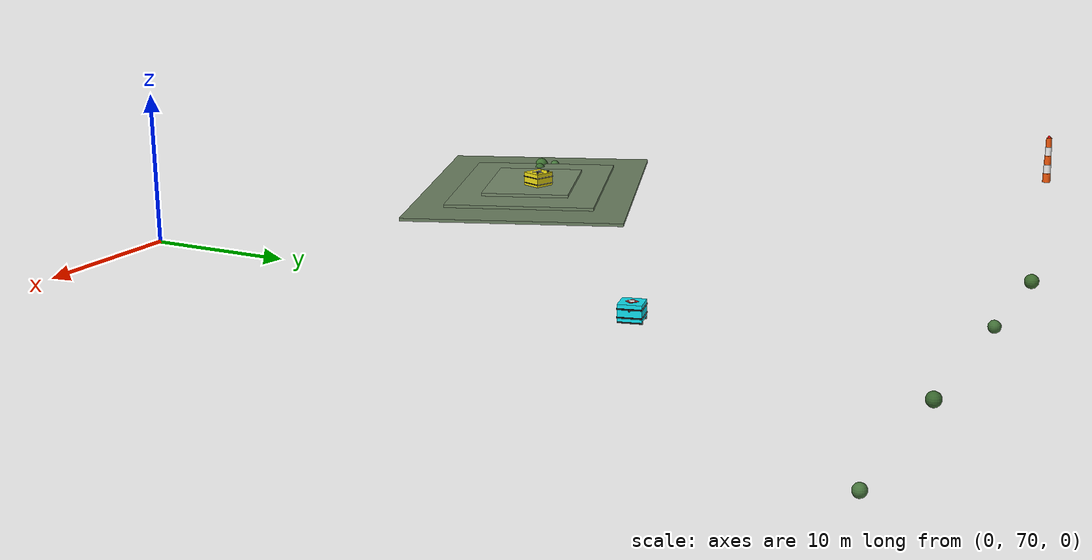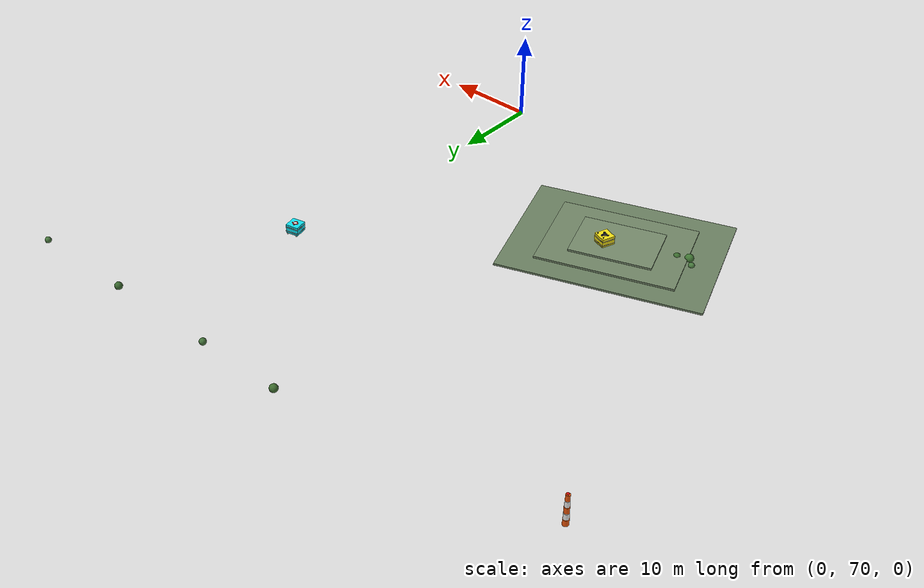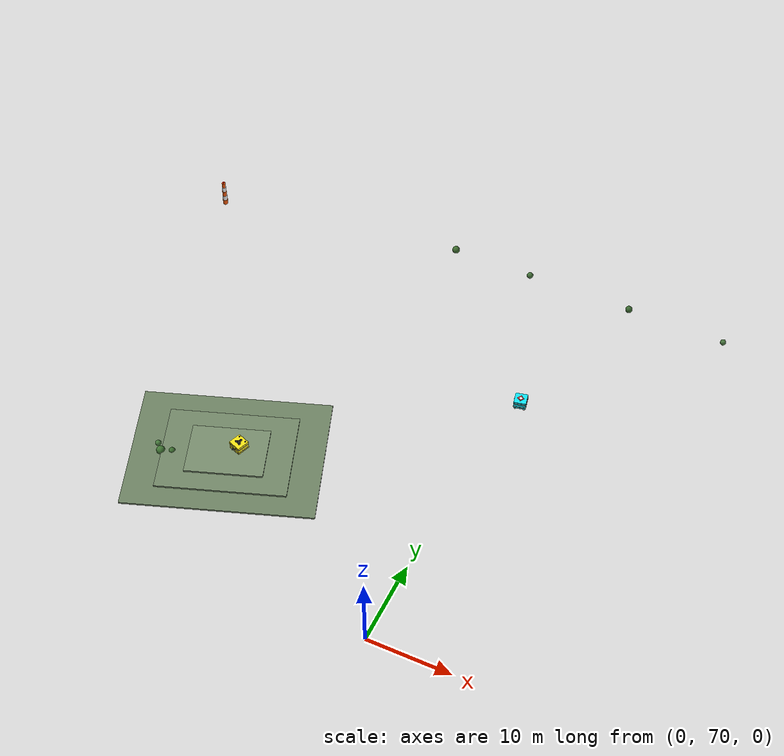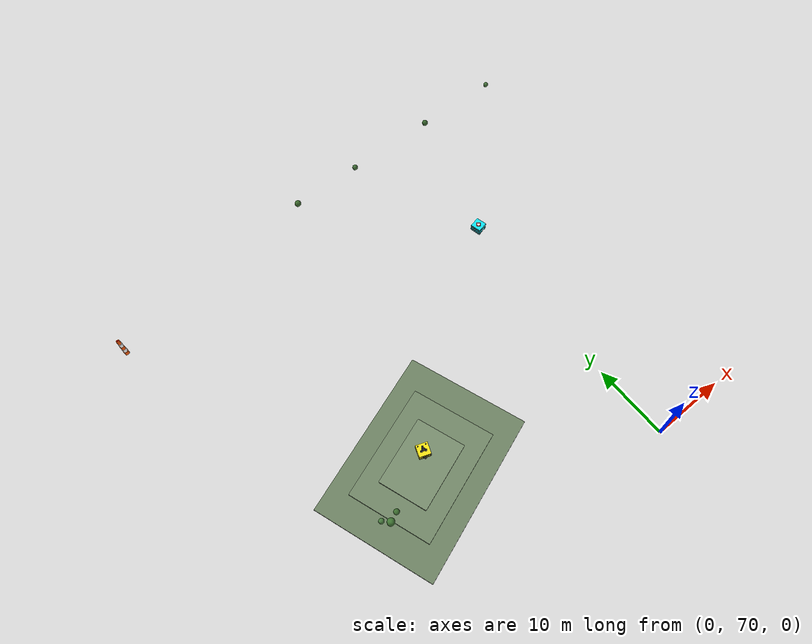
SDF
<sdf version="1.9">
 <world name="box_survey">
  <model name="survey_tower_nw">
   <static>true</static>
   <pose>-45.0 120.0 0 0 0 0</pose>
   <link name="link">
    <collision name="col">
     <geometry><cylinder><radius>0.35</radius><length>3.5</length></cylinder></geometry>
     <pose>0 0 1.75 0 0 0</pose>
    </collision>
    <visual name="b1">
     <pose>0 0 0.35 0 0 0</pose>
     <geometry><cylinder><radius>0.30</radius><length>0.7</length></cylinder></geometry>
     <material><ambient>0.95 0.35 0.05 1</ambient><diffuse>0.95 0.35 0.05 1</diffuse></material>
    </visual>
    <visual name="b2">
     <pose>0 0 1.05 0 0 0</pose>
     <geometry><cylinder><radius>0.28</radius><length>0.7</length></cylinder></geometry>
     <material><ambient>0.95 0.95 0.95 1</ambient><diffuse>0.95 0.95 0.95 1</diffuse></material>
    </visual>
    <visual name="b3">
     <pose>0 0 1.75 0 0 0</pose>
     <geometry><cylinder><radius>0.26</radius><length>0.7</length></cylinder></geometry>
     <material><ambient>0.95 0.35 0.05 1</ambient><diffuse>0.95 0.35 0.05 1</diffuse></material>
    </visual>
    <visual name="b4">
     <pose>0 0 2.45 0 0 0</pose>
     <geometry><cylinder><radius>0.24</radius><length>0.7</length></cylinder></geometry>
     <material><ambient>0.95 0.95 0.95 1</ambient><diffuse>0.95 0.95 0.95 1</diffuse></material>
    </visual>
    <visual name="b5">
     <pose>0 0 3.15 0 0 0</pose>
     <geometry><cylinder><radius>0.22</radius><length>0.7</length></cylinder></geometry>
     <material><ambient>0.95 0.35 0.05 1</ambient><diffuse>0.95 0.35 0.05 1</diffuse></material>
    </visual>
    <visual name="beacon">
     <pose>0 0 3.55 0 0 0</pose>
     <geometry><sphere><radius>0.12</radius></sphere></geometry>
     <material>
      <ambient>0.9 0.05 0.05 1</ambient>
      <diffuse>0.9 0.05 0.05 1</diffuse>
      <emissive>0.7 0.05 0.05 1</emissive>
     </material>
    </visual>
   </link>
  </model>
  <model name="natural_knoll_nw">
   <static>true</static>
   <pose>-25.0 85.0 0 0 0 0.35</pose>
   <link name="link">
    <collision name="col_t1">
     <pose>0 0 0.11 0 0 0</pose>
     <geometry><box><size>22.0 16.0 0.22</size></box></geometry>
    </collision>
    <visual name="vis_t1">
     <pose>0 0 0.11 0 0 0</pose>
     <geometry><box><size>22.0 16.0 0.22</size></box></geometry>
     <material><ambient>0.38 0.46 0.34 1</ambient><diffuse>0.42 0.50 0.38 1</diffuse></material>
    </visual>
    <collision name="col_t2">
     <pose>0 0 0.33 0 0 0</pose>
     <geometry><box><size>15.0 11.0 0.22</size></box></geometry>
    </collision>
    <visual name="vis_t2">
     <pose>0 0 0.33 0 0 0</pose>
     <geometry><box><size>15.0 11.0 0.22</size></box></geometry>
     <material><ambient>0.40 0.48 0.36 1</ambient><diffuse>0.44 0.52 0.40 1</diffuse></material>
    </visual>
    <collision name="col_t3">
     <pose>0 0 0.55 0 0 0</pose>
     <geometry><box><size>9.0 6.5 0.22</size></box></geometry>
    </collision>
    <visual name="vis_t3">
     <pose>0 0 0.55 0 0 0</pose>
     <geometry><box><size>9.0 6.5 0.22</size></box></geometry>
     <material><ambient>0.42 0.50 0.38 1</ambient><diffuse>0.46 0.54 0.42 1</diffuse></material>
    </visual>
   </link>
  </model>
  <model name="target_cube_yellow">
   <static>true</static>
   <pose>-24.0 86.0 0.44 0 0 -0.35</pose>
   <link name="link">
    <collision name="col">
     <pose>0 0 0.65 0 0 0</pose>
     <geometry><box><size>1.6 1.6 1.3</size></box></geometry>
    </collision>
    <visual name="sump_tray">
     <pose>0 0 0.08 0 0 0</pose>
     <geometry><box><size>1.70 1.70 0.16</size></box></geometry>
     <material><ambient>0.10 0.10 0.10 1</ambient><diffuse>0.12 0.12 0.12 1</diffuse></material>
    </visual>
    <visual name="sump_drain">
     <pose>0.82 0 0.08 0 1.5708 0</pose>
     <geometry><cylinder><radius>0.04</radius><length>0.08</length></cylinder></geometry>
     <material><ambient>0.3 0.3 0.3 1</ambient><diffuse>0.35 0.35 0.35 1</diffuse></material>
    </visual>
    <visual name="body">
     <pose>0 0 0.68 0 0 0</pose>
     <geometry><box><size>1.52 1.52 1.08</size></box></geometry>
     <material>
      <ambient>0.92 0.85 0.06 1</ambient>
      <diffuse>0.95 0.88 0.08 1</diffuse>
      <specular>0.3 0.3 0.3 1</specular>
     </material>
    </visual>
    <visual name="band_lower">
     <pose>0 0 0.42 0 0 0</pose>
     <geometry><box><size>1.55 1.55 0.06</size></box></geometry>
     <material><ambient>0.12 0.12 0.12 1</ambient><diffuse>0.14 0.14 0.14 1</diffuse></material>
    </visual>
    <visual name="band_upper">
     <pose>0 0 0.90 0 0 0</pose>
     <geometry><box><size>1.55 1.55 0.06</size></box></geometry>
     <material><ambient>0.12 0.12 0.12 1</ambient><diffuse>0.14 0.14 0.14 1</diffuse></material>
    </visual>
    <visual name="bio_disk">
     <pose>0 0 1.225 0 0 0</pose>
     <geometry><cylinder><radius>0.24</radius><length>0.02</length></cylinder></geometry>
     <material><ambient>0.08 0.08 0.08 1</ambient><diffuse>0.10 0.10 0.10 1</diffuse></material>
    </visual>
    <visual name="bio_petal1">
     <pose>0 0.32 1.225 0 0 0</pose>
     <geometry><cylinder><radius>0.14</radius><length>0.02</length></cylinder></geometry>
     <material><ambient>0.08 0.08 0.08 1</ambient><diffuse>0.10 0.10 0.10 1</diffuse></material>
    </visual>
    <visual name="bio_petal2">
     <pose>-0.28 -0.16 1.225 0 0 0</pose>
     <geometry><cylinder><radius>0.14</radius><length>0.02</length></cylinder></geometry>
     <material><ambient>0.08 0.08 0.08 1</ambient><diffuse>0.10 0.10 0.10 1</diffuse></material>
    </visual>
    <visual name="bio_petal3">
     <pose>0.28 -0.16 1.225 0 0 0</pose>
     <geometry><cylinder><radius>0.14</radius><length>0.02</length></cylinder></geometry>
     <material><ambient>0.08 0.08 0.08 1</ambient><diffuse>0.10 0.10 0.10 1</diffuse></material>
    </visual>
    <visual name="vent_1">
     <pose>-0.52 0.52 1.27 0 0 0</pose>
     <geometry><cylinder><radius>0.07</radius><length>0.12</length></cylinder></geometry>
     <material><ambient>0.20 0.20 0.20 1</ambient><diffuse>0.25 0.25 0.25 1</diffuse></material>
    </visual>
    <visual name="vent_2">
     <pose>0.52 0.52 1.27 0 0 0</pose>
     <geometry><cylinder><radius>0.07</radius><length>0.12</length></cylinder></geometry>
     <material><ambient>0.20 0.20 0.20 1</ambient><diffuse>0.25 0.25 0.25 1</diffuse></material>
    </visual>
    <visual name="diamond_placard">
     <pose>0 -0.765 0.65 0 0 0.7854</pose>
     <geometry><box><size>0.42 0.42 0.01</size></box></geometry>
     <material><ambient>0.08 0.08 0.08 1</ambient><diffuse>0.10 0.10 0.10 1</diffuse></material>
    </visual>
   </link>
  </model>
  <model name="target_cube_cyan">
   <static>true</static>
   <pose>2.0 106.0 0 0 0 0.22</pose>
   <link name="link">
    <collision name="col">
     <pose>0 0 0.6 0 0 0</pose>
     <geometry><box><size>1.5 1.5 1.2</size></box></geometry>
    </collision>
    <visual name="skid_left">
     <pose>-0.55 0 0.06 0 0 0</pose>
     <geometry><box><size>0.16 1.50 0.12</size></box></geometry>
     <material><ambient>0.12 0.12 0.12 1</ambient><diffuse>0.14 0.14 0.14 1</diffuse></material>
    </visual>
    <visual name="skid_right">
     <pose>0.55 0 0.06 0 0 0</pose>
     <geometry><box><size>0.16 1.50 0.12</size></box></geometry>
     <material><ambient>0.12 0.12 0.12 1</ambient><diffuse>0.14 0.14 0.14 1</diffuse></material>
    </visual>
    <visual name="body">
     <pose>0 0 0.62 0 0 0</pose>
     <geometry><box><size>1.44 1.44 1.02</size></box></geometry>
     <material>
      <ambient>0.04 0.82 0.88 1</ambient>
      <diffuse>0.06 0.88 0.94 1</diffuse>
      <specular>0.3 0.3 0.3 1</specular>
     </material>
    </visual>
    <visual name="collar_lower">
     <pose>0 0 0.35 0 0 0</pose>
     <geometry><box><size>1.49 1.49 0.08</size></box></geometry>
     <material><ambient>0.10 0.10 0.10 1</ambient><diffuse>0.12 0.12 0.12 1</diffuse></material>
    </visual>
    <visual name="collar_upper">
     <pose>0 0 0.85 0 0 0</pose>
     <geometry><box><size>1.49 1.49 0.08</size></box></geometry>
     <material><ambient>0.10 0.10 0.10 1</ambient><diffuse>0.12 0.12 0.12 1</diffuse></material>
    </visual>
    <visual name="hazard_diamond">
     <pose>0 0 1.14 0 0 0.7854</pose>
     <geometry><box><size>0.56 0.56 0.02</size></box></geometry>
     <material><ambient>0.88 0.12 0.12 1</ambient><diffuse>0.92 0.14 0.14 1</diffuse></material>
    </visual>
    <visual name="hazard_center">
     <pose>0 0 1.155 0 0 0.7854</pose>
     <geometry><box><size>0.36 0.36 0.01</size></box></geometry>
     <material><ambient>0.95 0.95 0.95 1</ambient><diffuse>0.98 0.98 0.98 1</diffuse></material>
    </visual>
    <visual name="lug_l">
     <pose>-0.74 0 0.80 0 1.5708 0</pose>
     <geometry><cylinder><radius>0.08</radius><length>0.06</length></cylinder></geometry>
     <material><ambient>0.12 0.12 0.12 1</ambient><diffuse>0.15 0.15 0.15 1</diffuse></material>
    </visual>
    <visual name="lug_r">
     <pose>0.74 0 0.80 0 1.5708 0</pose>
     <geometry><cylinder><radius>0.08</radius><length>0.06</length></cylinder></geometry>
     <material><ambient>0.12 0.12 0.12 1</ambient><diffuse>0.15 0.15 0.15 1</diffuse></material>
    </visual>
   </link>
  </model>
  <model name="shrub_cluster_nw">
   <static>true</static>
   <pose>-32.0 82.0 0 0 0 0</pose>
   <link name="link">
    <visual name="s1">
     <pose>0 0 0.35 0 0 0</pose>
     <geometry><sphere><radius>0.50</radius></sphere></geometry>
     <material><ambient>0.22 0.42 0.18 1</ambient><diffuse>0.25 0.46 0.20 1</diffuse></material>
    </visual>
    <visual name="s2">
     <pose>1.2 0.5 0.30 0 0 0</pose>
     <geometry><sphere><radius>0.40</radius></sphere></geometry>
     <material><ambient>0.20 0.38 0.16 1</ambient><diffuse>0.23 0.42 0.18 1</diffuse></material>
    </visual>
    <visual name="s3">
     <pose>-0.8 0.8 0.25 0 0 0</pose>
     <geometry><sphere><radius>0.35</radius></sphere></geometry>
     <material><ambient>0.24 0.44 0.20 1</ambient><diffuse>0.28 0.48 0.24 1</diffuse></material>
    </visual>
   </link>
  </model>
  <model name="perimeter_vegetation_n">
   <static>true</static>
   <pose>0 125.0 0 0 0 0</pose>
   <link name="link">
    <visual name="bush_a">
     <pose>-15 0 0.3 0 0 0</pose>
     <geometry><sphere><radius>0.45</radius></sphere></geometry>
     <material><ambient>0.20 0.38 0.15 1</ambient><diffuse>0.24 0.42 0.18 1</diffuse></material>
    </visual>
    <visual name="bush_b">
     <pose>-5 0 0.28 0 0 0</pose>
     <geometry><sphere><radius>0.38</radius></sphere></geometry>
     <material><ambient>0.22 0.40 0.18 1</ambient><diffuse>0.26 0.44 0.22 1</diffuse></material>
    </visual>
    <visual name="bush_c">
     <pose>8 0 0.32 0 0 0</pose>
     <geometry><sphere><radius>0.42</radius></sphere></geometry>
     <material><ambient>0.18 0.36 0.14 1</ambient><diffuse>0.22 0.40 0.18 1</diffuse></material>
    </visual>
    <visual name="bush_d">
     <pose>20 0 0.25 0 0 0</pose>
     <geometry><sphere><radius>0.35</radius></sphere></geometry>
     <material><ambient>0.24 0.42 0.20 1</ambient><diffuse>0.28 0.46 0.24 1</diffuse></material>
    </visual>
   </link>
  </model>
 </world>
</sdf>
